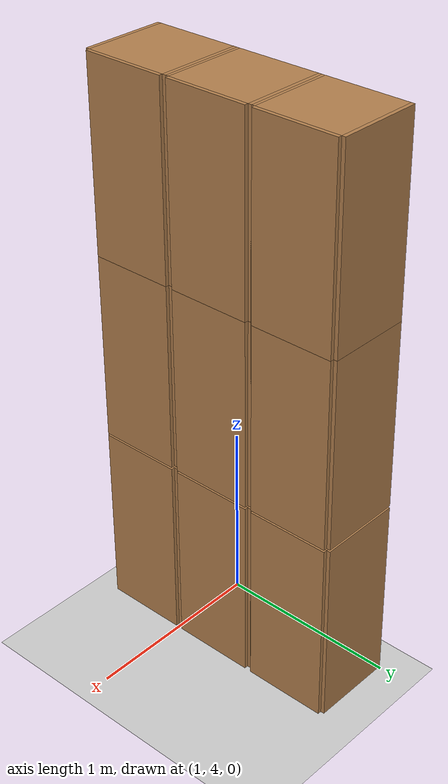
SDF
<sdf version="1.6">
 <world name="default">
  <model name="ground_plane">
   <static>1</static>
   <link name="link">
    <collision name="collision">
     <geometry><plane><normal>0 0 1</normal><size>100 100</size></plane></geometry>
     <surface>
      <contact><collide_bitmask>65535</collide_bitmask></contact>
      <friction><ode><mu>100</mu><mu2>50</mu2></ode></friction>
     </surface>
    </collision>
    <visual name="visual">
     <cast_shadows>0</cast_shadows>
     <geometry><plane><normal>0 0 1</normal><size>100 100</size></plane></geometry>
     <material>
      <script><uri>file://media/materials/scripts/gazebo.material</uri><name>Gazebo/Grey</name></script>
     </material>
    </visual>
   </link>
  </model>
  <model name="Locker18_clone_4_clone_2_clone_0">
   <model name="Locker18">
    <model name="Locker3">
     <model name="cabinet">
      <static>1</static>
      <link name="cabinet_bottom_plate">
       <inertial>
        <pose>0 0 -1 0 -0 0</pose>
        <inertia><ixx>2.05</ixx><ixy>0</ixy><ixz>0</ixz><iyy>2.05</iyy><iyz>0</iyz><izz>2.05</izz></inertia>
        <mass>25</mass>
       </inertial>
       <collision name="cabinet_bottom_plate_geom">
        <pose>0 0 0.01 0 -0 0</pose>
        <geometry><box><size>0.45 0.45 0.02</size></box></geometry>
       </collision>
       <visual name="cabinet_bottom_plate_geom_visual">
        <pose>0 0 0.01 0 -0 0</pose>
        <geometry><box><size>0.45 0.45 0.02</size></box></geometry>
        <material>
         <script><uri>file://media/materials/scripts/gazebo.material</uri><name>Gazebo/Wood</name></script>
        </material>
       </visual>
       <collision name="cabinet_bottom_plate_geom_cabinet_back_plate">
        <pose>0.235 0 0.51 0 -0 0</pose>
        <geometry><box><size>0.02 0.45 1.02</size></box></geometry>
       </collision>
       <visual name="cabinet_bottom_plate_geom_cabinet_back_plate_visual">
        <pose>0.235 0 0.51 0 -0 0</pose>
        <geometry><box><size>0.02 0.45 1.02</size></box></geometry>
        <material>
         <script><uri>file://media/materials/scripts/gazebo.material</uri><name>Gazebo/Wood</name></script>
        </material>
       </visual>
       <collision name="cabinet_bottom_plate_geom_cabinet_left_plate">
        <pose>0 0.235 0.51 0 -0 0</pose>
        <geometry><box><size>0.45 0.02 1.02</size></box></geometry>
       </collision>
       <visual name="cabinet_bottom_plate_geom_cabinet_left_plate_visual">
        <pose>0 0.235 0.51 0 -0 0</pose>
        <geometry><box><size>0.45 0.02 1.02</size></box></geometry>
        <material>
         <script><uri>file://media/materials/scripts/gazebo.material</uri><name>Gazebo/Wood</name></script>
        </material>
       </visual>
       <collision name="cabinet_bottom_plate_geom_cabinet_middle_plate">
        <pose>0 0 0.51 0 -0 0</pose>
        <geometry><box><size>0.45 0.45 0.02</size></box></geometry>
       </collision>
       <visual name="cabinet_bottom_plate_geom_cabinet_middle_plate_visual">
        <pose>0 0 0.51 0 -0 0</pose>
        <geometry><box><size>0.45 0.45 0.02</size></box></geometry>
        <material>
         <script><uri>file://media/materials/scripts/gazebo.material</uri><name>Gazebo/Wood</name></script>
        </material>
       </visual>
       <collision name="cabinet_bottom_plate_geom_cabinet_right_plate">
        <pose>0 -0.235 0.51 0 -0 0</pose>
        <geometry><box><size>0.45 0.02 1.02</size></box></geometry>
       </collision>
       <visual name="cabinet_bottom_plate_geom_cabinet_right_plate_visual">
        <pose>0 -0.235 0.51 0 -0 0</pose>
        <geometry><box><size>0.45 0.02 1.02</size></box></geometry>
        <material>
         <script><uri>file://media/materials/scripts/gazebo.material</uri><name>Gazebo/Wood</name></script>
        </material>
       </visual>
       <collision name="cabinet_bottom_plate_geom_cabinet_top_plate">
        <pose>0 0 1.01 0 -0 0</pose>
        <geometry><box><size>0.45 0.45 0.02</size></box></geometry>
       </collision>
       <visual name="cabinet_bottom_plate_geom_cabinet_top_plate_visual">
        <pose>0 0 1.01 0 -0 0</pose>
        <geometry><box><size>0.45 0.45 0.02</size></box></geometry>
        <material>
         <script><uri>file://media/materials/scripts/gazebo.material</uri><name>Gazebo/Wood</name></script>
        </material>
       </visual>
      </link>
      <pose>-0.676968 1.45758 0 0 -0 0</pose>
     </model>
     <model name="cabinet_clone">
      <static>1</static>
      <link name="cabinet_bottom_plate">
       <inertial>
        <pose>0 0 -1 0 -0 0</pose>
        <inertia><ixx>2.05</ixx><ixy>0</ixy><ixz>0</ixz><iyy>2.05</iyy><iyz>0</iyz><izz>2.05</izz></inertia>
        <mass>25</mass>
       </inertial>
       <collision name="cabinet_bottom_plate_geom">
        <pose>0 0 0.01 0 -0 0</pose>
        <geometry><box><size>0.45 0.45 0.02</size></box></geometry>
       </collision>
       <visual name="cabinet_bottom_plate_geom_visual">
        <pose>0 0 0.01 0 -0 0</pose>
        <geometry><box><size>0.45 0.45 0.02</size></box></geometry>
        <material>
         <script><uri>file://media/materials/scripts/gazebo.material</uri><name>Gazebo/Wood</name></script>
        </material>
       </visual>
       <collision name="cabinet_bottom_plate_geom_cabinet_back_plate">
        <pose>0.235 0 0.51 0 -0 0</pose>
        <geometry><box><size>0.02 0.45 1.02</size></box></geometry>
       </collision>
       <visual name="cabinet_bottom_plate_geom_cabinet_back_plate_visual">
        <pose>0.235 0 0.51 0 -0 0</pose>
        <geometry><box><size>0.02 0.45 1.02</size></box></geometry>
        <material>
         <script><uri>file://media/materials/scripts/gazebo.material</uri><name>Gazebo/Wood</name></script>
        </material>
       </visual>
       <collision name="cabinet_bottom_plate_geom_cabinet_left_plate">
        <pose>0 0.235 0.51 0 -0 0</pose>
        <geometry><box><size>0.45 0.02 1.02</size></box></geometry>
       </collision>
       <visual name="cabinet_bottom_plate_geom_cabinet_left_plate_visual">
        <pose>0 0.235 0.51 0 -0 0</pose>
        <geometry><box><size>0.45 0.02 1.02</size></box></geometry>
        <material>
         <script><uri>file://media/materials/scripts/gazebo.material</uri><name>Gazebo/Wood</name></script>
        </material>
       </visual>
       <collision name="cabinet_bottom_plate_geom_cabinet_middle_plate">
        <pose>0 0 0.51 0 -0 0</pose>
        <geometry><box><size>0.45 0.45 0.02</size></box></geometry>
       </collision>
       <visual name="cabinet_bottom_plate_geom_cabinet_middle_plate_visual">
        <pose>0 0 0.51 0 -0 0</pose>
        <geometry><box><size>0.45 0.45 0.02</size></box></geometry>
        <material>
         <script><uri>file://media/materials/scripts/gazebo.material</uri><name>Gazebo/Wood</name></script>
        </material>
       </visual>
       <collision name="cabinet_bottom_plate_geom_cabinet_right_plate">
        <pose>0 -0.235 0.51 0 -0 0</pose>
        <geometry><box><size>0.45 0.02 1.02</size></box></geometry>
       </collision>
       <visual name="cabinet_bottom_plate_geom_cabinet_right_plate_visual">
        <pose>0 -0.235 0.51 0 -0 0</pose>
        <geometry><box><size>0.45 0.02 1.02</size></box></geometry>
        <material>
         <script><uri>file://media/materials/scripts/gazebo.material</uri><name>Gazebo/Wood</name></script>
        </material>
       </visual>
       <collision name="cabinet_bottom_plate_geom_cabinet_top_plate">
        <pose>0 0 1.01 0 -0 0</pose>
        <geometry><box><size>0.45 0.45 0.02</size></box></geometry>
       </collision>
       <visual name="cabinet_bottom_plate_geom_cabinet_top_plate_visual">
        <pose>0 0 1.01 0 -0 0</pose>
        <geometry><box><size>0.45 0.45 0.02</size></box></geometry>
        <material>
         <script><uri>file://media/materials/scripts/gazebo.material</uri><name>Gazebo/Wood</name></script>
        </material>
       </visual>
      </link>
      <pose>-0.676968 0.970971 0 0 -0 0</pose>
     </model>
     <model name="cabinet_clone_0">
      <static>1</static>
      <link name="cabinet_bottom_plate">
       <inertial>
        <pose>0 0 -1 0 -0 0</pose>
        <inertia><ixx>2.05</ixx><ixy>0</ixy><ixz>0</ixz><iyy>2.05</iyy><iyz>0</iyz><izz>2.05</izz></inertia>
        <mass>25</mass>
       </inertial>
       <collision name="cabinet_bottom_plate_geom">
        <pose>0 0 0.01 0 -0 0</pose>
        <geometry><box><size>0.45 0.45 0.02</size></box></geometry>
       </collision>
       <visual name="cabinet_bottom_plate_geom_visual">
        <pose>0 0 0.01 0 -0 0</pose>
        <geometry><box><size>0.45 0.45 0.02</size></box></geometry>
        <material>
         <script><uri>file://media/materials/scripts/gazebo.material</uri><name>Gazebo/Wood</name></script>
        </material>
       </visual>
       <collision name="cabinet_bottom_plate_geom_cabinet_back_plate">
        <pose>0.235 0 0.51 0 -0 0</pose>
        <geometry><box><size>0.02 0.45 1.02</size></box></geometry>
       </collision>
       <visual name="cabinet_bottom_plate_geom_cabinet_back_plate_visual">
        <pose>0.235 0 0.51 0 -0 0</pose>
        <geometry><box><size>0.02 0.45 1.02</size></box></geometry>
        <material>
         <script><uri>file://media/materials/scripts/gazebo.material</uri><name>Gazebo/Wood</name></script>
        </material>
       </visual>
       <collision name="cabinet_bottom_plate_geom_cabinet_left_plate">
        <pose>0 0.235 0.51 0 -0 0</pose>
        <geometry><box><size>0.45 0.02 1.02</size></box></geometry>
       </collision>
       <visual name="cabinet_bottom_plate_geom_cabinet_left_plate_visual">
        <pose>0 0.235 0.51 0 -0 0</pose>
        <geometry><box><size>0.45 0.02 1.02</size></box></geometry>
        <material>
         <script><uri>file://media/materials/scripts/gazebo.material</uri><name>Gazebo/Wood</name></script>
        </material>
       </visual>
       <collision name="cabinet_bottom_plate_geom_cabinet_middle_plate">
        <pose>0 0 0.51 0 -0 0</pose>
        <geometry><box><size>0.45 0.45 0.02</size></box></geometry>
       </collision>
       <visual name="cabinet_bottom_plate_geom_cabinet_middle_plate_visual">
        <pose>0 0 0.51 0 -0 0</pose>
        <geometry><box><size>0.45 0.45 0.02</size></box></geometry>
        <material>
         <script><uri>file://media/materials/scripts/gazebo.material</uri><name>Gazebo/Wood</name></script>
        </material>
       </visual>
       <collision name="cabinet_bottom_plate_geom_cabinet_right_plate">
        <pose>0 -0.235 0.51 0 -0 0</pose>
        <geometry><box><size>0.45 0.02 1.02</size></box></geometry>
       </collision>
       <visual name="cabinet_bottom_plate_geom_cabinet_right_plate_visual">
        <pose>0 -0.235 0.51 0 -0 0</pose>
        <geometry><box><size>0.45 0.02 1.02</size></box></geometry>
        <material>
         <script><uri>file://media/materials/scripts/gazebo.material</uri><name>Gazebo/Wood</name></script>
        </material>
       </visual>
       <collision name="cabinet_bottom_plate_geom_cabinet_top_plate">
        <pose>0 0 1.01 0 -0 0</pose>
        <geometry><box><size>0.45 0.45 0.02</size></box></geometry>
       </collision>
       <visual name="cabinet_bottom_plate_geom_cabinet_top_plate_visual">
        <pose>0 0 1.01 0 -0 0</pose>
        <geometry><box><size>0.45 0.45 0.02</size></box></geometry>
        <material>
         <script><uri>file://media/materials/scripts/gazebo.material</uri><name>Gazebo/Wood</name></script>
        </material>
       </visual>
      </link>
      <pose>-0.676968 0.48391 0 0 -0 0</pose>
     </model>
     <static>0</static>
     <pose>0 3e-06 -1.02763 0 -0 0</pose>
    </model>
    <model name="Locker3_clone">
     <model name="cabinet">
      <static>1</static>
      <link name="cabinet_bottom_plate">
       <inertial>
        <pose>0 0 -1 0 -0 0</pose>
        <inertia><ixx>2.05</ixx><ixy>0</ixy><ixz>0</ixz><iyy>2.05</iyy><iyz>0</iyz><izz>2.05</izz></inertia>
        <mass>25</mass>
       </inertial>
       <collision name="cabinet_bottom_plate_geom">
        <pose>0 0 0.01 0 -0 0</pose>
        <geometry><box><size>0.45 0.45 0.02</size></box></geometry>
       </collision>
       <visual name="cabinet_bottom_plate_geom_visual">
        <pose>0 0 0.01 0 -0 0</pose>
        <geometry><box><size>0.45 0.45 0.02</size></box></geometry>
        <material>
         <script><uri>file://media/materials/scripts/gazebo.material</uri><name>Gazebo/Wood</name></script>
        </material>
       </visual>
       <collision name="cabinet_bottom_plate_geom_cabinet_back_plate">
        <pose>0.235 0 0.51 0 -0 0</pose>
        <geometry><box><size>0.02 0.45 1.02</size></box></geometry>
       </collision>
       <visual name="cabinet_bottom_plate_geom_cabinet_back_plate_visual">
        <pose>0.235 0 0.51 0 -0 0</pose>
        <geometry><box><size>0.02 0.45 1.02</size></box></geometry>
        <material>
         <script><uri>file://media/materials/scripts/gazebo.material</uri><name>Gazebo/Wood</name></script>
        </material>
       </visual>
       <collision name="cabinet_bottom_plate_geom_cabinet_left_plate">
        <pose>0 0.235 0.51 0 -0 0</pose>
        <geometry><box><size>0.45 0.02 1.02</size></box></geometry>
       </collision>
       <visual name="cabinet_bottom_plate_geom_cabinet_left_plate_visual">
        <pose>0 0.235 0.51 0 -0 0</pose>
        <geometry><box><size>0.45 0.02 1.02</size></box></geometry>
        <material>
         <script><uri>file://media/materials/scripts/gazebo.material</uri><name>Gazebo/Wood</name></script>
        </material>
       </visual>
       <collision name="cabinet_bottom_plate_geom_cabinet_middle_plate">
        <pose>0 0 0.51 0 -0 0</pose>
        <geometry><box><size>0.45 0.45 0.02</size></box></geometry>
       </collision>
       <visual name="cabinet_bottom_plate_geom_cabinet_middle_plate_visual">
        <pose>0 0 0.51 0 -0 0</pose>
        <geometry><box><size>0.45 0.45 0.02</size></box></geometry>
        <material>
         <script><uri>file://media/materials/scripts/gazebo.material</uri><name>Gazebo/Wood</name></script>
        </material>
       </visual>
       <collision name="cabinet_bottom_plate_geom_cabinet_right_plate">
        <pose>0 -0.235 0.51 0 -0 0</pose>
        <geometry><box><size>0.45 0.02 1.02</size></box></geometry>
       </collision>
       <visual name="cabinet_bottom_plate_geom_cabinet_right_plate_visual">
        <pose>0 -0.235 0.51 0 -0 0</pose>
        <geometry><box><size>0.45 0.02 1.02</size></box></geometry>
        <material>
         <script><uri>file://media/materials/scripts/gazebo.material</uri><name>Gazebo/Wood</name></script>
        </material>
       </visual>
       <collision name="cabinet_bottom_plate_geom_cabinet_top_plate">
        <pose>0 0 1.01 0 -0 0</pose>
        <geometry><box><size>0.45 0.45 0.02</size></box></geometry>
       </collision>
       <visual name="cabinet_bottom_plate_geom_cabinet_top_plate_visual">
        <pose>0 0 1.01 0 -0 0</pose>
        <geometry><box><size>0.45 0.45 0.02</size></box></geometry>
        <material>
         <script><uri>file://media/materials/scripts/gazebo.material</uri><name>Gazebo/Wood</name></script>
        </material>
       </visual>
      </link>
      <pose>-0.676968 1.45758 0 0 -0 0</pose>
     </model>
     <model name="cabinet_clone">
      <static>1</static>
      <link name="cabinet_bottom_plate">
       <inertial>
        <pose>0 0 -1 0 -0 0</pose>
        <inertia><ixx>2.05</ixx><ixy>0</ixy><ixz>0</ixz><iyy>2.05</iyy><iyz>0</iyz><izz>2.05</izz></inertia>
        <mass>25</mass>
       </inertial>
       <collision name="cabinet_bottom_plate_geom">
        <pose>0 0 0.01 0 -0 0</pose>
        <geometry><box><size>0.45 0.45 0.02</size></box></geometry>
       </collision>
       <visual name="cabinet_bottom_plate_geom_visual">
        <pose>0 0 0.01 0 -0 0</pose>
        <geometry><box><size>0.45 0.45 0.02</size></box></geometry>
        <material>
         <script><uri>file://media/materials/scripts/gazebo.material</uri><name>Gazebo/Wood</name></script>
        </material>
       </visual>
       <collision name="cabinet_bottom_plate_geom_cabinet_back_plate">
        <pose>0.235 0 0.51 0 -0 0</pose>
        <geometry><box><size>0.02 0.45 1.02</size></box></geometry>
       </collision>
       <visual name="cabinet_bottom_plate_geom_cabinet_back_plate_visual">
        <pose>0.235 0 0.51 0 -0 0</pose>
        <geometry><box><size>0.02 0.45 1.02</size></box></geometry>
        <material>
         <script><uri>file://media/materials/scripts/gazebo.material</uri><name>Gazebo/Wood</name></script>
        </material>
       </visual>
       <collision name="cabinet_bottom_plate_geom_cabinet_left_plate">
        <pose>0 0.235 0.51 0 -0 0</pose>
        <geometry><box><size>0.45 0.02 1.02</size></box></geometry>
       </collision>
       <visual name="cabinet_bottom_plate_geom_cabinet_left_plate_visual">
        <pose>0 0.235 0.51 0 -0 0</pose>
        <geometry><box><size>0.45 0.02 1.02</size></box></geometry>
        <material>
         <script><uri>file://media/materials/scripts/gazebo.material</uri><name>Gazebo/Wood</name></script>
        </material>
       </visual>
       <collision name="cabinet_bottom_plate_geom_cabinet_middle_plate">
        <pose>0 0 0.51 0 -0 0</pose>
        <geometry><box><size>0.45 0.45 0.02</size></box></geometry>
       </collision>
       <visual name="cabinet_bottom_plate_geom_cabinet_middle_plate_visual">
        <pose>0 0 0.51 0 -0 0</pose>
        <geometry><box><size>0.45 0.45 0.02</size></box></geometry>
        <material>
         <script><uri>file://media/materials/scripts/gazebo.material</uri><name>Gazebo/Wood</name></script>
        </material>
       </visual>
       <collision name="cabinet_bottom_plate_geom_cabinet_right_plate">
        <pose>0 -0.235 0.51 0 -0 0</pose>
        <geometry><box><size>0.45 0.02 1.02</size></box></geometry>
       </collision>
       <visual name="cabinet_bottom_plate_geom_cabinet_right_plate_visual">
        <pose>0 -0.235 0.51 0 -0 0</pose>
        <geometry><box><size>0.45 0.02 1.02</size></box></geometry>
        <material>
         <script><uri>file://media/materials/scripts/gazebo.material</uri><name>Gazebo/Wood</name></script>
        </material>
       </visual>
       <collision name="cabinet_bottom_plate_geom_cabinet_top_plate">
        <pose>0 0 1.01 0 -0 0</pose>
        <geometry><box><size>0.45 0.45 0.02</size></box></geometry>
       </collision>
       <visual name="cabinet_bottom_plate_geom_cabinet_top_plate_visual">
        <pose>0 0 1.01 0 -0 0</pose>
        <geometry><box><size>0.45 0.45 0.02</size></box></geometry>
        <material>
         <script><uri>file://media/materials/scripts/gazebo.material</uri><name>Gazebo/Wood</name></script>
        </material>
       </visual>
      </link>
      <pose>-0.676968 0.970971 0 0 -0 0</pose>
     </model>
     <model name="cabinet_clone_0">
      <static>1</static>
      <link name="cabinet_bottom_plate">
       <inertial>
        <pose>0 0 -1 0 -0 0</pose>
        <inertia><ixx>2.05</ixx><ixy>0</ixy><ixz>0</ixz><iyy>2.05</iyy><iyz>0</iyz><izz>2.05</izz></inertia>
        <mass>25</mass>
       </inertial>
       <collision name="cabinet_bottom_plate_geom">
        <pose>0 0 0.01 0 -0 0</pose>
        <geometry><box><size>0.45 0.45 0.02</size></box></geometry>
       </collision>
       <visual name="cabinet_bottom_plate_geom_visual">
        <pose>0 0 0.01 0 -0 0</pose>
        <geometry><box><size>0.45 0.45 0.02</size></box></geometry>
        <material>
         <script><uri>file://media/materials/scripts/gazebo.material</uri><name>Gazebo/Wood</name></script>
        </material>
       </visual>
       <collision name="cabinet_bottom_plate_geom_cabinet_back_plate">
        <pose>0.235 0 0.51 0 -0 0</pose>
        <geometry><box><size>0.02 0.45 1.02</size></box></geometry>
       </collision>
       <visual name="cabinet_bottom_plate_geom_cabinet_back_plate_visual">
        <pose>0.235 0 0.51 0 -0 0</pose>
        <geometry><box><size>0.02 0.45 1.02</size></box></geometry>
        <material>
         <script><uri>file://media/materials/scripts/gazebo.material</uri><name>Gazebo/Wood</name></script>
        </material>
       </visual>
       <collision name="cabinet_bottom_plate_geom_cabinet_left_plate">
        <pose>0 0.235 0.51 0 -0 0</pose>
        <geometry><box><size>0.45 0.02 1.02</size></box></geometry>
       </collision>
       <visual name="cabinet_bottom_plate_geom_cabinet_left_plate_visual">
        <pose>0 0.235 0.51 0 -0 0</pose>
        <geometry><box><size>0.45 0.02 1.02</size></box></geometry>
        <material>
         <script><uri>file://media/materials/scripts/gazebo.material</uri><name>Gazebo/Wood</name></script>
        </material>
       </visual>
       <collision name="cabinet_bottom_plate_geom_cabinet_middle_plate">
        <pose>0 0 0.51 0 -0 0</pose>
        <geometry><box><size>0.45 0.45 0.02</size></box></geometry>
       </collision>
       <visual name="cabinet_bottom_plate_geom_cabinet_middle_plate_visual">
        <pose>0 0 0.51 0 -0 0</pose>
        <geometry><box><size>0.45 0.45 0.02</size></box></geometry>
        <material>
         <script><uri>file://media/materials/scripts/gazebo.material</uri><name>Gazebo/Wood</name></script>
        </material>
       </visual>
       <collision name="cabinet_bottom_plate_geom_cabinet_right_plate">
        <pose>0 -0.235 0.51 0 -0 0</pose>
        <geometry><box><size>0.45 0.02 1.02</size></box></geometry>
       </collision>
       <visual name="cabinet_bottom_plate_geom_cabinet_right_plate_visual">
        <pose>0 -0.235 0.51 0 -0 0</pose>
        <geometry><box><size>0.45 0.02 1.02</size></box></geometry>
        <material>
         <script><uri>file://media/materials/scripts/gazebo.material</uri><name>Gazebo/Wood</name></script>
        </material>
       </visual>
       <collision name="cabinet_bottom_plate_geom_cabinet_top_plate">
        <pose>0 0 1.01 0 -0 0</pose>
        <geometry><box><size>0.45 0.45 0.02</size></box></geometry>
       </collision>
       <visual name="cabinet_bottom_plate_geom_cabinet_top_plate_visual">
        <pose>0 0 1.01 0 -0 0</pose>
        <geometry><box><size>0.45 0.45 0.02</size></box></geometry>
        <material>
         <script><uri>file://media/materials/scripts/gazebo.material</uri><name>Gazebo/Wood</name></script>
        </material>
       </visual>
      </link>
      <pose>-0.676968 0.48391 0 0 -0 0</pose>
     </model>
     <static>0</static>
     <pose>0 3e-06 0.003717 0 -0 0</pose>
    </model>
    <model name="Locker3_clone_clone">
     <model name="cabinet">
      <static>1</static>
      <link name="cabinet_bottom_plate">
       <inertial>
        <pose>0 0 -1 0 -0 0</pose>
        <inertia><ixx>2.05</ixx><ixy>0</ixy><ixz>0</ixz><iyy>2.05</iyy><iyz>0</iyz><izz>2.05</izz></inertia>
        <mass>25</mass>
       </inertial>
       <collision name="cabinet_bottom_plate_geom">
        <pose>0 0 0.01 0 -0 0</pose>
        <geometry><box><size>0.45 0.45 0.02</size></box></geometry>
       </collision>
       <visual name="cabinet_bottom_plate_geom_visual">
        <pose>0 0 0.01 0 -0 0</pose>
        <geometry><box><size>0.45 0.45 0.02</size></box></geometry>
        <material>
         <script><uri>file://media/materials/scripts/gazebo.material</uri><name>Gazebo/Wood</name></script>
        </material>
       </visual>
       <collision name="cabinet_bottom_plate_geom_cabinet_back_plate">
        <pose>0.235 0 0.51 0 -0 0</pose>
        <geometry><box><size>0.02 0.45 1.02</size></box></geometry>
       </collision>
       <visual name="cabinet_bottom_plate_geom_cabinet_back_plate_visual">
        <pose>0.235 0 0.51 0 -0 0</pose>
        <geometry><box><size>0.02 0.45 1.02</size></box></geometry>
        <material>
         <script><uri>file://media/materials/scripts/gazebo.material</uri><name>Gazebo/Wood</name></script>
        </material>
       </visual>
       <collision name="cabinet_bottom_plate_geom_cabinet_left_plate">
        <pose>0 0.235 0.51 0 -0 0</pose>
        <geometry><box><size>0.45 0.02 1.02</size></box></geometry>
       </collision>
       <visual name="cabinet_bottom_plate_geom_cabinet_left_plate_visual">
        <pose>0 0.235 0.51 0 -0 0</pose>
        <geometry><box><size>0.45 0.02 1.02</size></box></geometry>
        <material>
         <script><uri>file://media/materials/scripts/gazebo.material</uri><name>Gazebo/Wood</name></script>
        </material>
       </visual>
       <collision name="cabinet_bottom_plate_geom_cabinet_middle_plate">
        <pose>0 0 0.51 0 -0 0</pose>
        <geometry><box><size>0.45 0.45 0.02</size></box></geometry>
       </collision>
       <visual name="cabinet_bottom_plate_geom_cabinet_middle_plate_visual">
        <pose>0 0 0.51 0 -0 0</pose>
        <geometry><box><size>0.45 0.45 0.02</size></box></geometry>
        <material>
         <script><uri>file://media/materials/scripts/gazebo.material</uri><name>Gazebo/Wood</name></script>
        </material>
       </visual>
       <collision name="cabinet_bottom_plate_geom_cabinet_right_plate">
        <pose>0 -0.235 0.51 0 -0 0</pose>
        <geometry><box><size>0.45 0.02 1.02</size></box></geometry>
       </collision>
       <visual name="cabinet_bottom_plate_geom_cabinet_right_plate_visual">
        <pose>0 -0.235 0.51 0 -0 0</pose>
        <geometry><box><size>0.45 0.02 1.02</size></box></geometry>
        <material>
         <script><uri>file://media/materials/scripts/gazebo.material</uri><name>Gazebo/Wood</name></script>
        </material>
       </visual>
       <collision name="cabinet_bottom_plate_geom_cabinet_top_plate">
        <pose>0 0 1.01 0 -0 0</pose>
        <geometry><box><size>0.45 0.45 0.02</size></box></geometry>
       </collision>
       <visual name="cabinet_bottom_plate_geom_cabinet_top_plate_visual">
        <pose>0 0 1.01 0 -0 0</pose>
        <geometry><box><size>0.45 0.45 0.02</size></box></geometry>
        <material>
         <script><uri>file://media/materials/scripts/gazebo.material</uri><name>Gazebo/Wood</name></script>
        </material>
       </visual>
      </link>
      <pose>-0.676968 1.45758 0 0 -0 0</pose>
     </model>
     <model name="cabinet_clone">
      <static>1</static>
      <link name="cabinet_bottom_plate">
       <inertial>
        <pose>0 0 -1 0 -0 0</pose>
        <inertia><ixx>2.05</ixx><ixy>0</ixy><ixz>0</ixz><iyy>2.05</iyy><iyz>0</iyz><izz>2.05</izz></inertia>
        <mass>25</mass>
       </inertial>
       <collision name="cabinet_bottom_plate_geom">
        <pose>0 0 0.01 0 -0 0</pose>
        <geometry><box><size>0.45 0.45 0.02</size></box></geometry>
       </collision>
       <visual name="cabinet_bottom_plate_geom_visual">
        <pose>0 0 0.01 0 -0 0</pose>
        <geometry><box><size>0.45 0.45 0.02</size></box></geometry>
        <material>
         <script><uri>file://media/materials/scripts/gazebo.material</uri><name>Gazebo/Wood</name></script>
        </material>
       </visual>
       <collision name="cabinet_bottom_plate_geom_cabinet_back_plate">
        <pose>0.235 0 0.51 0 -0 0</pose>
        <geometry><box><size>0.02 0.45 1.02</size></box></geometry>
       </collision>
       <visual name="cabinet_bottom_plate_geom_cabinet_back_plate_visual">
        <pose>0.235 0 0.51 0 -0 0</pose>
        <geometry><box><size>0.02 0.45 1.02</size></box></geometry>
        <material>
         <script><uri>file://media/materials/scripts/gazebo.material</uri><name>Gazebo/Wood</name></script>
        </material>
       </visual>
       <collision name="cabinet_bottom_plate_geom_cabinet_left_plate">
        <pose>0 0.235 0.51 0 -0 0</pose>
        <geometry><box><size>0.45 0.02 1.02</size></box></geometry>
       </collision>
       <visual name="cabinet_bottom_plate_geom_cabinet_left_plate_visual">
        <pose>0 0.235 0.51 0 -0 0</pose>
        <geometry><box><size>0.45 0.02 1.02</size></box></geometry>
        <material>
         <script><uri>file://media/materials/scripts/gazebo.material</uri><name>Gazebo/Wood</name></script>
        </material>
       </visual>
       <collision name="cabinet_bottom_plate_geom_cabinet_middle_plate">
        <pose>0 0 0.51 0 -0 0</pose>
        <geometry><box><size>0.45 0.45 0.02</size></box></geometry>
       </collision>
       <visual name="cabinet_bottom_plate_geom_cabinet_middle_plate_visual">
        <pose>0 0 0.51 0 -0 0</pose>
        <geometry><box><size>0.45 0.45 0.02</size></box></geometry>
        <material>
         <script><uri>file://media/materials/scripts/gazebo.material</uri><name>Gazebo/Wood</name></script>
        </material>
       </visual>
       <collision name="cabinet_bottom_plate_geom_cabinet_right_plate">
        <pose>0 -0.235 0.51 0 -0 0</pose>
        <geometry><box><size>0.45 0.02 1.02</size></box></geometry>
       </collision>
       <visual name="cabinet_bottom_plate_geom_cabinet_right_plate_visual">
        <pose>0 -0.235 0.51 0 -0 0</pose>
        <geometry><box><size>0.45 0.02 1.02</size></box></geometry>
        <material>
         <script><uri>file://media/materials/scripts/gazebo.material</uri><name>Gazebo/Wood</name></script>
        </material>
       </visual>
       <collision name="cabinet_bottom_plate_geom_cabinet_top_plate">
        <pose>0 0 1.01 0 -0 0</pose>
        <geometry><box><size>0.45 0.45 0.02</size></box></geometry>
       </collision>
       <visual name="cabinet_bottom_plate_geom_cabinet_top_plate_visual">
        <pose>0 0 1.01 0 -0 0</pose>
        <geometry><box><size>0.45 0.45 0.02</size></box></geometry>
        <material>
         <script><uri>file://media/materials/scripts/gazebo.material</uri><name>Gazebo/Wood</name></script>
        </material>
       </visual>
      </link>
      <pose>-0.676968 0.970971 0 0 -0 0</pose>
     </model>
     <model name="cabinet_clone_0">
      <static>1</static>
      <link name="cabinet_bottom_plate">
       <inertial>
        <pose>0 0 -1 0 -0 0</pose>
        <inertia><ixx>2.05</ixx><ixy>0</ixy><ixz>0</ixz><iyy>2.05</iyy><iyz>0</iyz><izz>2.05</izz></inertia>
        <mass>25</mass>
       </inertial>
       <collision name="cabinet_bottom_plate_geom">
        <pose>0 0 0.01 0 -0 0</pose>
        <geometry><box><size>0.45 0.45 0.02</size></box></geometry>
       </collision>
       <visual name="cabinet_bottom_plate_geom_visual">
        <pose>0 0 0.01 0 -0 0</pose>
        <geometry><box><size>0.45 0.45 0.02</size></box></geometry>
        <material>
         <script><uri>file://media/materials/scripts/gazebo.material</uri><name>Gazebo/Wood</name></script>
        </material>
       </visual>
       <collision name="cabinet_bottom_plate_geom_cabinet_back_plate">
        <pose>0.235 0 0.51 0 -0 0</pose>
        <geometry><box><size>0.02 0.45 1.02</size></box></geometry>
       </collision>
       <visual name="cabinet_bottom_plate_geom_cabinet_back_plate_visual">
        <pose>0.235 0 0.51 0 -0 0</pose>
        <geometry><box><size>0.02 0.45 1.02</size></box></geometry>
        <material>
         <script><uri>file://media/materials/scripts/gazebo.material</uri><name>Gazebo/Wood</name></script>
        </material>
       </visual>
       <collision name="cabinet_bottom_plate_geom_cabinet_left_plate">
        <pose>0 0.235 0.51 0 -0 0</pose>
        <geometry><box><size>0.45 0.02 1.02</size></box></geometry>
       </collision>
       <visual name="cabinet_bottom_plate_geom_cabinet_left_plate_visual">
        <pose>0 0.235 0.51 0 -0 0</pose>
        <geometry><box><size>0.45 0.02 1.02</size></box></geometry>
        <material>
         <script><uri>file://media/materials/scripts/gazebo.material</uri><name>Gazebo/Wood</name></script>
        </material>
       </visual>
       <collision name="cabinet_bottom_plate_geom_cabinet_middle_plate">
        <pose>0 0 0.51 0 -0 0</pose>
        <geometry><box><size>0.45 0.45 0.02</size></box></geometry>
       </collision>
       <visual name="cabinet_bottom_plate_geom_cabinet_middle_plate_visual">
        <pose>0 0 0.51 0 -0 0</pose>
        <geometry><box><size>0.45 0.45 0.02</size></box></geometry>
        <material>
         <script><uri>file://media/materials/scripts/gazebo.material</uri><name>Gazebo/Wood</name></script>
        </material>
       </visual>
       <collision name="cabinet_bottom_plate_geom_cabinet_right_plate">
        <pose>0 -0.235 0.51 0 -0 0</pose>
        <geometry><box><size>0.45 0.02 1.02</size></box></geometry>
       </collision>
       <visual name="cabinet_bottom_plate_geom_cabinet_right_plate_visual">
        <pose>0 -0.235 0.51 0 -0 0</pose>
        <geometry><box><size>0.45 0.02 1.02</size></box></geometry>
        <material>
         <script><uri>file://media/materials/scripts/gazebo.material</uri><name>Gazebo/Wood</name></script>
        </material>
       </visual>
       <collision name="cabinet_bottom_plate_geom_cabinet_top_plate">
        <pose>0 0 1.01 0 -0 0</pose>
        <geometry><box><size>0.45 0.45 0.02</size></box></geometry>
       </collision>
       <visual name="cabinet_bottom_plate_geom_cabinet_top_plate_visual">
        <pose>0 0 1.01 0 -0 0</pose>
        <geometry><box><size>0.45 0.45 0.02</size></box></geometry>
        <material>
         <script><uri>file://media/materials/scripts/gazebo.material</uri><name>Gazebo/Wood</name></script>
        </material>
       </visual>
      </link>
      <pose>-0.676968 0.48391 0 0 -0 0</pose>
     </model>
     <static>0</static>
     <pose>0 3e-06 1.02391 0 -0 0</pose>
    </model>
    <static>0</static>
    <pose>-0 4e-06 4e-06 0 -0 0</pose>
   </model>
   <static>0</static>
   <pose>1.94577 3.32042 1.08672 0 -0 0</pose>
  </model>
 </world>
</sdf>
